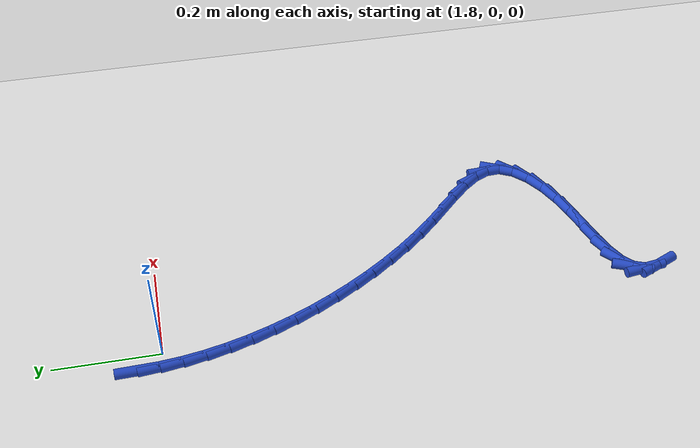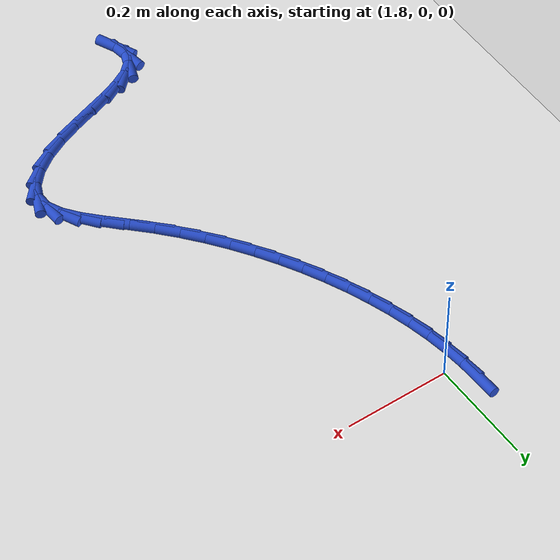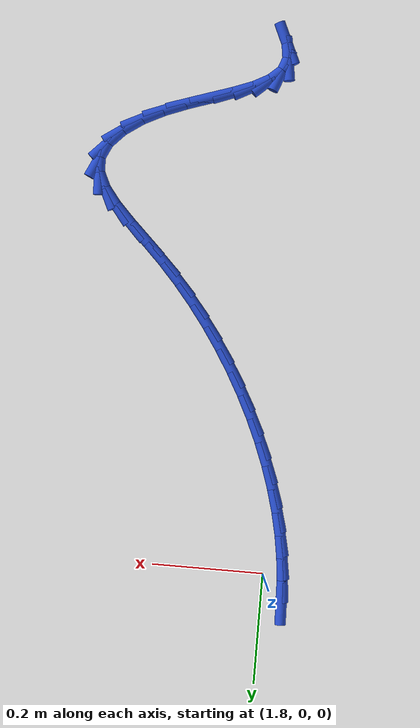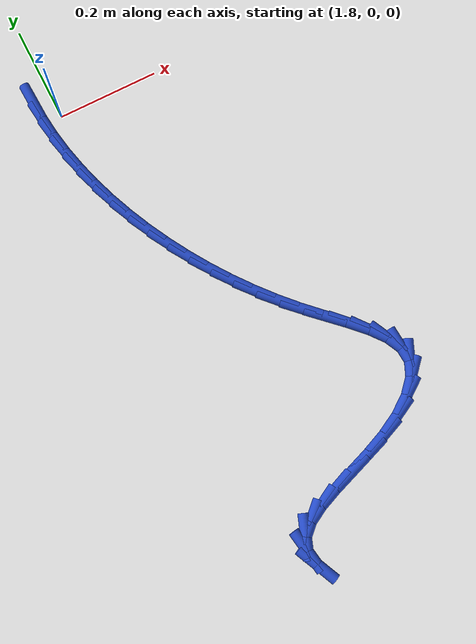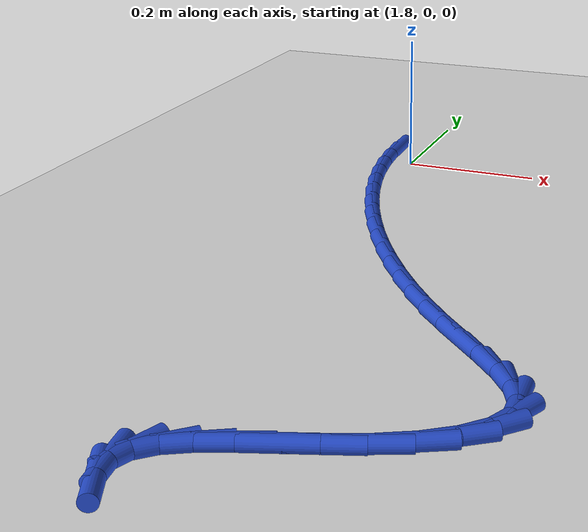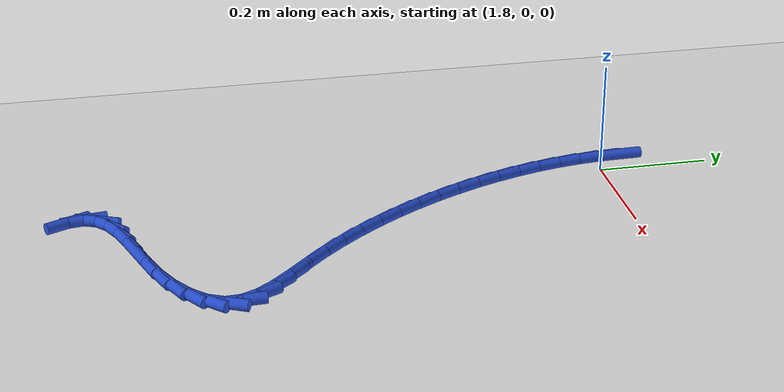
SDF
<sdf version="1.6">
 <world name="default">
  <model name="ground_plane">
   <static>1</static>
   <link name="link">
    <collision name="collision">
     <geometry><plane><normal>0 0 1</normal><size>100 100</size></plane></geometry>
     <surface><friction><ode><mu>100</mu><mu2>50</mu2></ode></friction></surface>
    </collision>
    <visual name="visual">
     <cast_shadows>0</cast_shadows>
     <geometry><plane><normal>0 0 1</normal><size>100 100</size></plane></geometry>
     <material>
      <script><uri>file://media/materials/scripts/gazebo.material</uri><name>Gazebo/WhiteGlow</name></script>
     </material>
    </visual>
   </link>
  </model>
  <model name="line">
   <link name="link_140">
    <pose>1.7629177022257811 0.04766740487805446 0.01 0 1.57 -1.5373685629087628</pose>
    <collision name="collision">
     <geometry><cylinder><radius>0.01</radius><length>0.08</length></cylinder></geometry>
    </collision>
    <visual name="visual">
     <material>
      <script><name>Gazebo/Blue</name><uri>file://media/materials/scripts/gazebo.material</uri></script>
     </material>
     <geometry><cylinder><radius>0.01</radius><length>0.08</length></cylinder></geometry>
    </visual>
   </link>
   <link name="link_141">
    <pose>1.76425730995336 0.007607629151943643 0.01 0 1.57 -1.4703635771693297</pose>
    <collision name="collision">
     <geometry><cylinder><radius>0.01</radius><length>0.08</length></cylinder></geometry>
    </collision>
    <visual name="visual">
     <material>
      <script><name>Gazebo/Blue</name><uri>file://media/materials/scripts/gazebo.material</uri></script>
     </material>
     <geometry><cylinder><radius>0.01</radius><length>0.08</length></cylinder></geometry>
    </visual>
   </link>
   <link name="link_142">
    <pose>1.7683701323432914 -0.03320559938058971 0.01 0 1.57 -1.408297274683121</pose>
    <collision name="collision">
     <geometry><cylinder><radius>0.01</radius><length>0.08</length></cylinder></geometry>
    </collision>
    <visual name="visual">
     <material>
      <script><name>Gazebo/Blue</name><uri>file://media/materials/scripts/gazebo.material</uri></script>
     </material>
     <geometry><cylinder><radius>0.01</radius><length>0.08</length></cylinder></geometry>
    </visual>
   </link>
   <link name="link_143">
    <pose>1.7751548184013068 -0.07458960686644268 0.01 0 1.57 -1.350473897431496</pose>
    <collision name="collision">
     <geometry><cylinder><radius>0.01</radius><length>0.08</length></cylinder></geometry>
    </collision>
    <visual name="visual">
     <material>
      <script><name>Gazebo/Blue</name><uri>file://media/materials/scripts/gazebo.material</uri></script>
     </material>
     <geometry><cylinder><radius>0.01</radius><length>0.08</length></cylinder></geometry>
    </visual>
   </link>
   <link name="link_144">
    <pose>1.7845100171331345 -0.11636171945250734 0.01 0 1.57 -1.2962276627519975</pose>
    <collision name="collision">
     <geometry><cylinder><radius>0.01</radius><length>0.08</length></cylinder></geometry>
    </collision>
    <visual name="visual">
     <material>
      <script><name>Gazebo/Blue</name><uri>file://media/materials/scripts/gazebo.material</uri></script>
     </material>
     <geometry><cylinder><radius>0.01</radius><length>0.08</length></cylinder></geometry>
    </visual>
   </link>
   <link name="link_145">
    <pose>1.796334377544507 -0.15833926328568093 0.01 0 1.57 -1.2449356634002209</pose>
    <collision name="collision">
     <geometry><cylinder><radius>0.01</radius><length>0.08</length></cylinder></geometry>
    </collision>
    <visual name="visual">
     <material>
      <script><name>Gazebo/Blue</name><uri>file://media/materials/scripts/gazebo.material</uri></script>
     </material>
     <geometry><cylinder><radius>0.01</radius><length>0.08</length></cylinder></geometry>
    </visual>
   </link>
   <link name="link_146">
    <pose>1.8105265486411521 -0.20033956451285534 0.01 0 1.57 -1.1960210130981015</pose>
    <collision name="collision">
     <geometry><cylinder><radius>0.01</radius><length>0.08</length></cylinder></geometry>
    </collision>
    <visual name="visual">
     <material>
      <script><name>Gazebo/Blue</name><uri>file://media/materials/scripts/gazebo.material</uri></script>
     </material>
     <geometry><cylinder><radius>0.01</radius><length>0.08</length></cylinder></geometry>
    </visual>
   </link>
   <link name="link_147">
    <pose>1.8269851794288021 -0.2421799492809279 0.01 0 1.57 -1.1489502101728615</pose>
    <collision name="collision">
     <geometry><cylinder><radius>0.01</radius><length>0.08</length></cylinder></geometry>
    </collision>
    <visual name="visual">
     <material>
      <script><name>Gazebo/Blue</name><uri>file://media/materials/scripts/gazebo.material</uri></script>
     </material>
     <geometry><cylinder><radius>0.01</radius><length>0.08</length></cylinder></geometry>
    </visual>
   </link>
   <link name="link_148">
    <pose>1.845608918913186 -0.28367774373679056 0.01 0 1.57 -1.103227330380926</pose>
    <collision name="collision">
     <geometry><cylinder><radius>0.01</radius><length>0.08</length></cylinder></geometry>
    </collision>
    <visual name="visual">
     <material>
      <script><name>Gazebo/Blue</name><uri>file://media/materials/scripts/gazebo.material</uri></script>
     </material>
     <geometry><cylinder><radius>0.01</radius><length>0.08</length></cylinder></geometry>
    </visual>
   </link>
   <link name="link_149">
    <pose>1.866296416100035 -0.3246502740273404 0.01 0 1.57 -1.058386665773409</pose>
    <collision name="collision">
     <geometry><cylinder><radius>0.01</radius><length>0.08</length></cylinder></geometry>
    </collision>
    <visual name="visual">
     <material>
      <script><name>Gazebo/Blue</name><uri>file://media/materials/scripts/gazebo.material</uri></script>
     </material>
     <geometry><cylinder><radius>0.01</radius><length>0.08</length></cylinder></geometry>
    </visual>
   </link>
   <link name="link_150">
    <pose>1.8889463199950782 -0.3649148662994697 0.01 0 1.57 -1.0139847621142175</pose>
    <collision name="collision">
     <geometry><cylinder><radius>0.01</radius><length>0.08</length></cylinder></geometry>
    </collision>
    <visual name="visual">
     <material>
      <script><name>Gazebo/Blue</name><uri>file://media/materials/scripts/gazebo.material</uri></script>
     </material>
     <geometry><cylinder><radius>0.01</radius><length>0.08</length></cylinder></geometry>
    </visual>
   </link>
   <link name="link_151">
    <pose>1.9134572796040459 -0.4042888467000741 0.01 0 1.57 -0.9695923964270531</pose>
    <collision name="collision">
     <geometry><cylinder><radius>0.01</radius><length>0.08</length></cylinder></geometry>
    </collision>
    <visual name="visual">
     <material>
      <script><name>Gazebo/Blue</name><uri>file://media/materials/scripts/gazebo.material</uri></script>
     </material>
     <geometry><cylinder><radius>0.01</radius><length>0.08</length></cylinder></geometry>
    </visual>
   </link>
   <link name="link_152">
    <pose>1.9397279439326705 -0.44258954137604956 0.01 0 1.57 -0.924786808516669</pose>
    <collision name="collision">
     <geometry><cylinder><radius>0.01</radius><length>0.08</length></cylinder></geometry>
    </collision>
    <visual name="visual">
     <material>
      <script><name>Gazebo/Blue</name><uri>file://media/materials/scripts/gazebo.material</uri></script>
     </material>
     <geometry><cylinder><radius>0.01</radius><length>0.08</length></cylinder></geometry>
    </visual>
   </link>
   <link name="link_153">
    <pose>1.967656961986679 -0.47963427647428825 0.01 0 1.57 -0.8791444056812209</pose>
    <collision name="collision">
     <geometry><cylinder><radius>0.01</radius><length>0.08</length></cylinder></geometry>
    </collision>
    <visual name="visual">
     <material>
      <script><name>Gazebo/Blue</name><uri>file://media/materials/scripts/gazebo.material</uri></script>
     </material>
     <geometry><cylinder><radius>0.01</radius><length>0.08</length></cylinder></geometry>
    </visual>
   </link>
   <link name="link_154">
    <pose>1.997142982771805 -0.5152403781416871 0.01 0 1.57 -0.8322341693995603</pose>
    <collision name="collision">
     <geometry><cylinder><radius>0.01</radius><length>0.08</length></cylinder></geometry>
    </collision>
    <visual name="visual">
     <material>
      <script><name>Gazebo/Blue</name><uri>file://media/materials/scripts/gazebo.material</uri></script>
     </material>
     <geometry><cylinder><radius>0.01</radius><length>0.08</length></cylinder></geometry>
    </visual>
   </link>
   <link name="link_155">
    <pose>2.0280846552937755 -0.5492251725251384 0.01 0 1.57 -0.7868178419228947</pose>
    <collision name="collision">
     <geometry><cylinder><radius>0.01</radius><length>0.08</length></cylinder></geometry>
    </collision>
    <visual name="visual">
     <material>
      <script><name>Gazebo/Blue</name><uri>file://media/materials/scripts/gazebo.material</uri></script>
     </material>
     <geometry><cylinder><radius>0.01</radius><length>0.08</length></cylinder></geometry>
    </visual>
   </link>
   <link name="link_156">
    <pose>2.0602062597595583 -0.5814381114219386 0.01 0 1.57 -0.7718589401229807</pose>
    <collision name="collision">
     <geometry><cylinder><radius>0.01</radius><length>0.08</length></cylinder></geometry>
    </collision>
    <visual name="visual">
     <material>
      <script><name>Gazebo/Blue</name><uri>file://media/materials/scripts/gazebo.material</uri></script>
     </material>
     <geometry><cylinder><radius>0.01</radius><length>0.08</length></cylinder></geometry>
    </visual>
   </link>
   <link name="link_157">
    <pose>2.0916313399069515 -0.612023565792406 0.01 0 1.57 -0.8075707693952748</pose>
    <collision name="collision">
     <geometry><cylinder><radius>0.01</radius><length>0.08</length></cylinder></geometry>
    </collision>
    <visual name="visual">
     <material>
      <script><name>Gazebo/Blue</name><uri>file://media/materials/scripts/gazebo.material</uri></script>
     </material>
     <geometry><cylinder><radius>0.01</radius><length>0.08</length></cylinder></geometry>
    </visual>
   </link>
   <link name="link_158">
    <pose>2.1196226356934016 -0.6412845008035453 0.01 0 1.57 -0.9131416520684869</pose>
    <collision name="collision">
     <geometry><cylinder><radius>0.01</radius><length>0.08</length></cylinder></geometry>
    </collision>
    <visual name="visual">
     <material>
      <script><name>Gazebo/Blue</name><uri>file://media/materials/scripts/gazebo.material</uri></script>
     </material>
     <geometry><cylinder><radius>0.01</radius><length>0.08</length></cylinder></geometry>
    </visual>
   </link>
   <link name="link_159">
    <pose>2.1414346052404376 -0.6695254074650946 0.01 0 1.57 -1.132919021787809</pose>
    <collision name="collision">
     <geometry><cylinder><radius>0.01</radius><length>0.08</length></cylinder></geometry>
    </collision>
    <visual name="visual">
     <material>
      <script><name>Gazebo/Blue</name><uri>file://media/materials/scripts/gazebo.material</uri></script>
     </material>
     <geometry><cylinder><radius>0.01</radius><length>0.08</length></cylinder></geometry>
    </visual>
   </link>
   <link name="link_160">
    <pose>2.1543217066695903 -0.6970507767867945 0.01 0 1.57 -1.5259537617214525</pose>
    <collision name="collision">
     <geometry><cylinder><radius>0.01</radius><length>0.08</length></cylinder></geometry>
    </collision>
    <visual name="visual">
     <material>
      <script><name>Gazebo/Blue</name><uri>file://media/materials/scripts/gazebo.material</uri></script>
     </material>
     <geometry><cylinder><radius>0.01</radius><length>0.08</length></cylinder></geometry>
    </visual>
   </link>
   <link name="link_161">
    <pose>2.1555383981023892 -0.7241650997783861 0.01 0 1.57 1.1317727814650405</pose>
    <collision name="collision">
     <geometry><cylinder><radius>0.01</radius><length>0.08</length></cylinder></geometry>
    </collision>
    <visual name="visual">
     <material>
      <script><name>Gazebo/Blue</name><uri>file://media/materials/scripts/gazebo.material</uri></script>
     </material>
     <geometry><cylinder><radius>0.01</radius><length>0.08</length></cylinder></geometry>
    </visual>
   </link>
   <link name="link_162">
    <pose>2.1429348181162484 -0.7510047432486372 0.01 0 1.57 0.8050098355677492</pose>
    <collision name="collision">
     <geometry><cylinder><radius>0.01</radius><length>0.08</length></cylinder></geometry>
    </collision>
    <visual name="visual">
     <material>
      <script><name>Gazebo/Blue</name><uri>file://media/materials/scripts/gazebo.material</uri></script>
     </material>
     <geometry><cylinder><radius>0.01</radius><length>0.08</length></cylinder></geometry>
    </visual>
   </link>
   <link name="link_163">
    <pose>2.1183407965887486 -0.7765828502823643 0.01 0 1.57 0.6042686737731294</pose>
    <collision name="collision">
     <geometry><cylinder><radius>0.01</radius><length>0.08</length></cylinder></geometry>
    </collision>
    <visual name="visual">
     <material>
      <script><name>Gazebo/Blue</name><uri>file://media/materials/scripts/gazebo.material</uri></script>
     </material>
     <geometry><cylinder><radius>0.01</radius><length>0.08</length></cylinder></geometry>
    </visual>
   </link>
   <link name="link_164">
    <pose>2.0852169095174915 -0.7994523039613776 0.01 0 1.57 0.4607737971991475</pose>
    <collision name="collision">
     <geometry><cylinder><radius>0.01</radius><length>0.08</length></cylinder></geometry>
    </collision>
    <visual name="visual">
     <material>
      <script><name>Gazebo/Blue</name><uri>file://media/materials/scripts/gazebo.material</uri></script>
     </material>
     <geometry><cylinder><radius>0.01</radius><length>0.08</length></cylinder></geometry>
    </visual>
   </link>
   <link name="link_165">
    <pose>2.0468909843305645 -0.8184777868516259 0.01 0 1.57 0.36797062601592306</pose>
    <collision name="collision">
     <geometry><cylinder><radius>0.01</radius><length>0.08</length></cylinder></geometry>
    </collision>
    <visual name="visual">
     <material>
      <script><name>Gazebo/Blue</name><uri>file://media/materials/scripts/gazebo.material</uri></script>
     </material>
     <geometry><cylinder><radius>0.01</radius><length>0.08</length></cylinder></geometry>
    </visual>
   </link>
   <link name="link_166">
    <pose>2.0059222079886103 -0.8342724925532904 0.01 0 1.57 0.3219821657794494</pose>
    <collision name="collision">
     <geometry><cylinder><radius>0.01</radius><length>0.08</length></cylinder></geometry>
    </collision>
    <visual name="visual">
     <material>
      <script><name>Gazebo/Blue</name><uri>file://media/materials/scripts/gazebo.material</uri></script>
     </material>
     <geometry><cylinder><radius>0.01</radius><length>0.08</length></cylinder></geometry>
    </visual>
   </link>
   <link name="link_167">
    <pose>1.964603135946952 -0.8480561506854852 0.01 0 1.57 0.31871328354562317</pose>
    <collision name="collision">
     <geometry><cylinder><radius>0.01</radius><length>0.08</length></cylinder></geometry>
    </collision>
    <visual name="visual">
     <material>
      <script><name>Gazebo/Blue</name><uri>file://media/materials/scripts/gazebo.material</uri></script>
     </material>
     <geometry><cylinder><radius>0.01</radius><length>0.08</length></cylinder></geometry>
    </visual>
   </link>
   <link name="link_168">
    <pose>1.9252260608169671 -0.8610490887873826 0.01 0 1.57 0.36484386196291413</pose>
    <collision name="collision">
     <geometry><cylinder><radius>0.01</radius><length>0.08</length></cylinder></geometry>
    </collision>
    <visual name="visual">
     <material>
      <script><name>Gazebo/Blue</name><uri>file://media/materials/scripts/gazebo.material</uri></script>
     </material>
     <geometry><cylinder><radius>0.01</radius><length>0.08</length></cylinder></geometry>
    </visual>
   </link>
   <link name="link_169">
    <pose>1.8900832752100256 -0.8744716343981551 0.01 0 1.57 0.48478767509878334</pose>
    <collision name="collision">
     <geometry><cylinder><radius>0.01</radius><length>0.08</length></cylinder></geometry>
    </collision>
    <visual name="visual">
     <material>
      <script><name>Gazebo/Blue</name><uri>file://media/materials/scripts/gazebo.material</uri></script>
     </material>
     <geometry><cylinder><radius>0.01</radius><length>0.08</length></cylinder></geometry>
    </visual>
   </link>
   <link name="link_170">
    <pose>1.8614670717375037 -0.8895441150569753 0.01 0 1.57 0.7362966460705441</pose>
    <collision name="collision">
     <geometry><cylinder><radius>0.01</radius><length>0.08</length></cylinder></geometry>
    </collision>
    <visual name="visual">
     <material>
      <script><name>Gazebo/Blue</name><uri>file://media/materials/scripts/gazebo.material</uri></script>
     </material>
     <geometry><cylinder><radius>0.01</radius><length>0.08</length></cylinder></geometry>
    </visual>
   </link>
   <link name="link_171">
    <pose>1.8416697430107718 -0.907486858303015 0.01 0 1.57 1.1952755202183802</pose>
    <collision name="collision">
     <geometry><cylinder><radius>0.01</radius><length>0.08</length></cylinder></geometry>
    </collision>
    <visual name="visual">
     <material>
      <script><name>Gazebo/Blue</name><uri>file://media/materials/scripts/gazebo.material</uri></script>
     </material>
     <geometry><cylinder><radius>0.01</radius><length>0.08</length></cylinder></geometry>
    </visual>
   </link>
   <link name="link_172">
    <pose>1.8329835816412046 -0.929520191675448 0.01 0 1.57 -1.4260537399618487</pose>
    <collision name="collision">
     <geometry><cylinder><radius>0.01</radius><length>0.08</length></cylinder></geometry>
    </collision>
    <visual name="visual">
     <material>
      <script><name>Gazebo/Blue</name><uri>file://media/materials/scripts/gazebo.material</uri></script>
     </material>
     <geometry><cylinder><radius>0.01</radius><length>0.08</length></cylinder></geometry>
    </visual>
   </link>
   <link name="link_173">
    <pose>1.8369167303814293 -0.9565035650643011 0.01 0 1.57 -1.14495936122482</pose>
    <collision name="collision">
     <geometry><cylinder><radius>0.01</radius><length>0.08</length></cylinder></geometry>
    </collision>
    <visual name="visual">
     <material>
      <script><name>Gazebo/Blue</name><uri>file://media/materials/scripts/gazebo.material</uri></script>
     </material>
     <geometry><cylinder><radius>0.01</radius><length>0.08</length></cylinder></geometry>
    </visual>
   </link>
  </model>
 </world>
</sdf>
